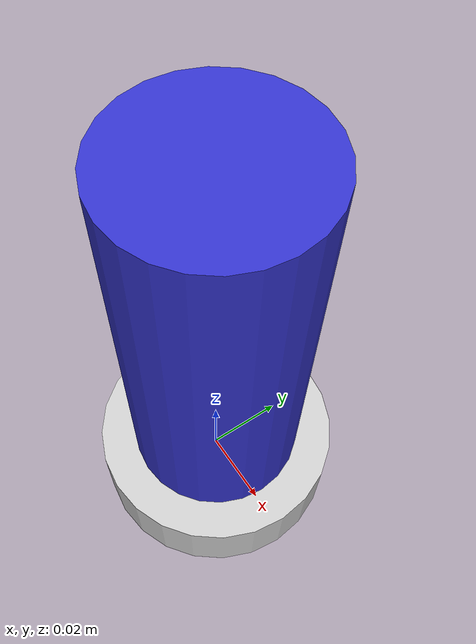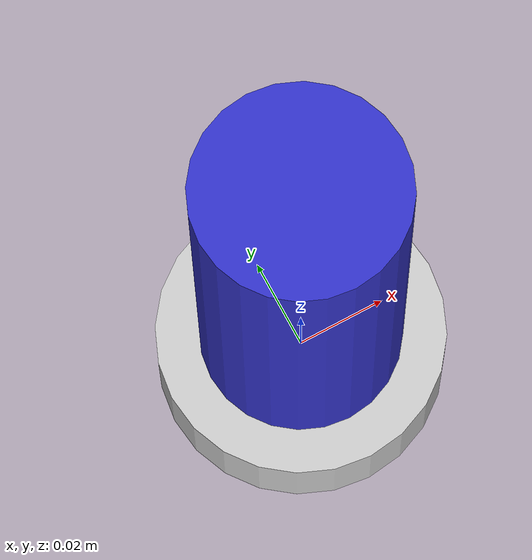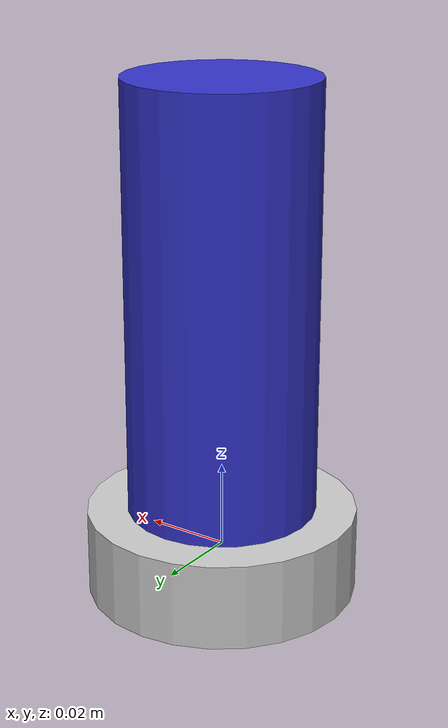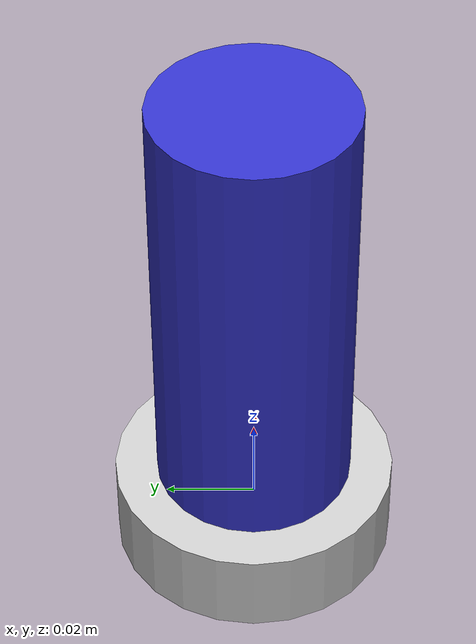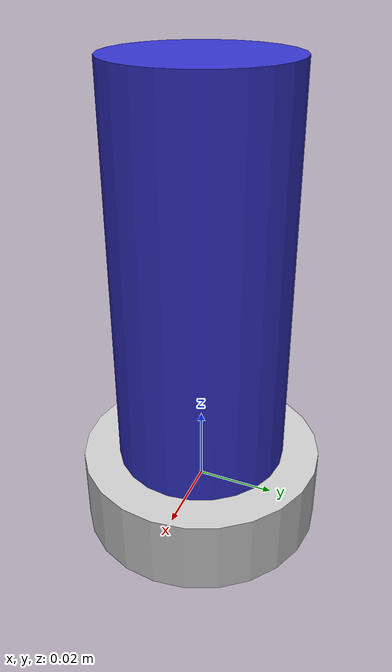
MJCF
<mujoco model="peg_ee">
  <compiler angle="radian" />
  <option timestep="0.001"/>
  <worldbody>
    <!-- Base: positioned so that its bottom touches z=0 -->
    <body name="base" pos="0 0 0">
      <geom name="base_geom" type="cylinder" size="0.0315 0.01" rgba="0.8 0.8 0.8 1"/>

      <!-- Cylinder: attached on top of the base -->
      <!-- The cylinder body is positioned so that its center is 0.03 m above the base's center,
           meaning its bottom (center - 0.02 m) aligns with the top of the base at z=0.02 -->
      <body name="cylinder" pos="0 0 0.05">
        <geom name="cylinder_geom" type="cylinder" size="0.022 0.06" rgba="0.2 0.2 0.8 1"/>

        <!-- Endpoint of the peg (useful to get the position)-->
        <body name="peg_end" pos="0 0 0.06">
          <site name="peg_end_site" pos="0 0 0" euler="3.14 0 0" group="5"/>
        </body>
      </body>
    </body>
  </worldbody>
</mujoco>
